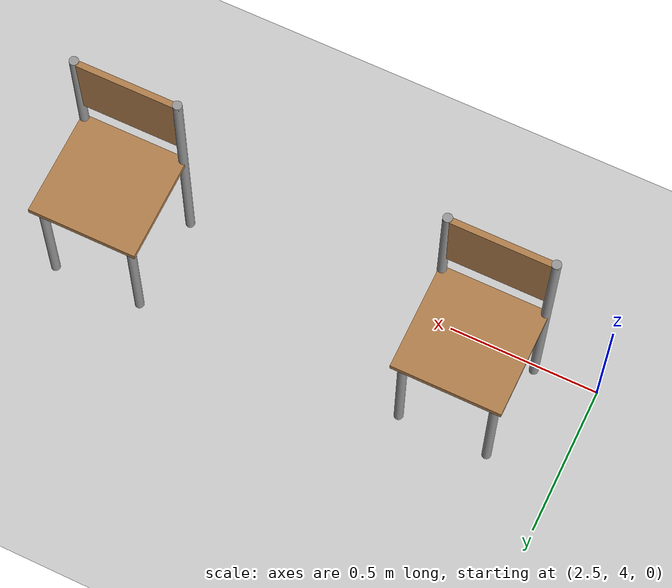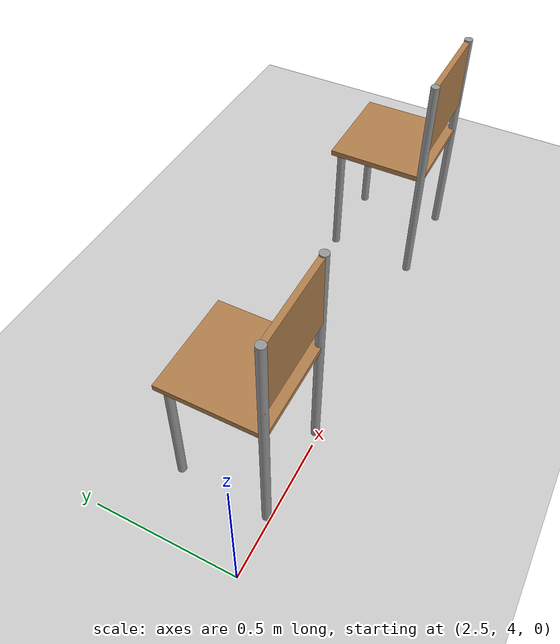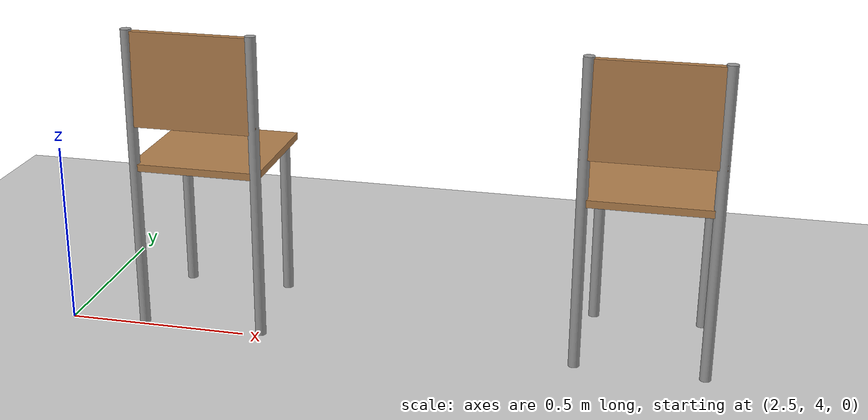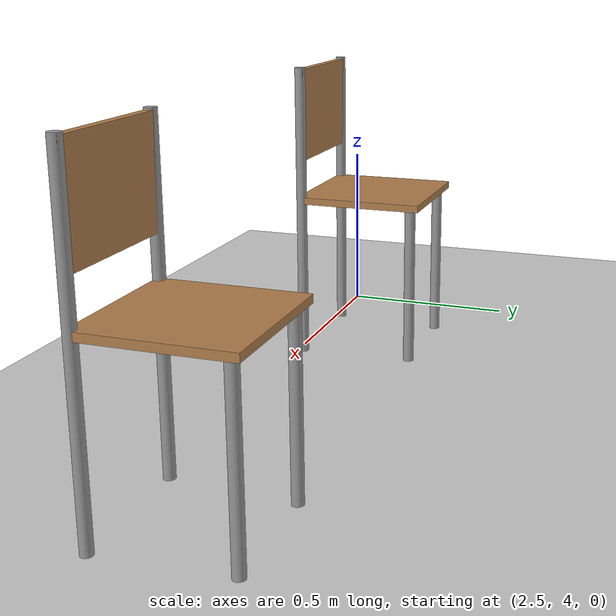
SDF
<sdf version="1.7">
 <world name="default">
  <model name="ground_plane">
   <static>1</static>
   <link name="link">
    <collision name="collision">
     <geometry><plane><normal>0 0 1</normal><size>100 100</size></plane></geometry>
     <surface>
      <contact><collide_bitmask>65535</collide_bitmask></contact>
      <friction><ode><mu>100</mu><mu2>50</mu2></ode></friction>
     </surface>
    </collision>
    <visual name="visual">
     <cast_shadows>0</cast_shadows>
     <geometry><plane><normal>0 0 1</normal><size>100 100</size></plane></geometry>
     <material>
      <script><uri>file://media/materials/scripts/gazebo.material</uri><name>Gazebo/Grey</name></script>
     </material>
    </visual>
   </link>
  </model>
  <model name="chair_mod_0_clone_2_clone">
   <link name="link">
    <inertial>
     <mass>1</mass>
     <inertia><ixx>1</ixx><ixy>0</ixy><ixz>0</ixz><iyy>1</iyy><iyz>0</iyz><izz>1</izz></inertia>
    </inertial>
    <visual name="back_right_leg">
     <pose>-0.17 -0.17 0.42 0 -0 0</pose>
     <geometry><cylinder><radius>0.015</radius><length>0.84</length></cylinder></geometry>
     <material>
      <script><uri>file://media/materials/scripts/gazebo.material</uri><name>Gazebo/Grey</name></script>
      <shader type="pixel"><normal_map>__default__</normal_map></shader>
      <ambient>0.3 0.3 0.3 1</ambient>
      <diffuse>0.7 0.7 0.7 1</diffuse>
      <specular>0.01 0.01 0.01 1</specular>
      <emissive>0 0 0 1</emissive>
     </material>
    </visual>
    <visual name="back_left_leg">
     <pose>-0.15 0.15 0.23 0 -0 0</pose>
     <geometry><cylinder><radius>0.015</radius><length>0.46</length></cylinder></geometry>
     <material>
      <script><uri>file://media/materials/scripts/gazebo.material</uri><name>Gazebo/Grey</name></script>
      <shader type="pixel"><normal_map>__default__</normal_map></shader>
      <ambient>0.3 0.3 0.3 1</ambient>
      <diffuse>0.7 0.7 0.7 1</diffuse>
      <specular>0.01 0.01 0.01 1</specular>
      <emissive>0 0 0 1</emissive>
     </material>
    </visual>
    <visual name="visual1">
     <pose>0 0 0.46 0 -0 0</pose>
     <geometry><box><size>0.36 0.36 0.02</size></box></geometry>
     <material>
      <script><uri>file://media/materials/scripts/gazebo.material</uri><name>Gazebo/Wood</name></script>
      <shader type="pixel"><normal_map>__default__</normal_map></shader>
      <ambient>1 1 1 1</ambient>
      <diffuse>1 1 1 1</diffuse>
      <specular>0.2 0.2 0.2 1</specular>
      <emissive>0 0 0 1</emissive>
     </material>
    </visual>
    <visual name="ModelPreview_1::link::visual_5">
     <pose>0 -0.17 0.705 1.56 -0 0</pose>
     <geometry><box><size>0.36 0.26 0.02</size></box></geometry>
     <material>
      <script><uri>file://media/materials/scripts/gazebo.material</uri><name>Gazebo/Wood</name></script>
      <shader type="pixel"><normal_map>__default__</normal_map></shader>
      <ambient>1 1 1 1</ambient>
      <diffuse>1 1 1 1</diffuse>
      <specular>0.2 0.2 0.2 1</specular>
      <emissive>0 0 0 1</emissive>
     </material>
    </visual>
    <visual name="front_left_leg">
     <pose>0.15 0.15 0.23 0 -0 0</pose>
     <geometry><cylinder><radius>0.015</radius><length>0.46</length></cylinder></geometry>
     <material>
      <script><uri>file://media/materials/scripts/gazebo.material</uri><name>Gazebo/Grey</name></script>
      <shader type="pixel"><normal_map>__default__</normal_map></shader>
      <ambient>0.3 0.3 0.3 1</ambient>
      <diffuse>0.7 0.7 0.7 1</diffuse>
      <specular>0.01 0.01 0.01 1</specular>
      <emissive>0 0 0 1</emissive>
     </material>
    </visual>
    <visual name="front_right_leg">
     <pose>0.17 -0.17 0.42 0 -0 0</pose>
     <geometry><cylinder><radius>0.015</radius><length>0.84</length></cylinder></geometry>
     <material>
      <script><uri>file://media/materials/scripts/gazebo.material</uri><name>Gazebo/Grey</name></script>
      <shader type="pixel"><normal_map>__default__</normal_map></shader>
      <ambient>0.3 0.3 0.3 1</ambient>
      <diffuse>0.7 0.7 0.7 1</diffuse>
      <specular>0.01 0.01 0.01 1</specular>
      <emissive>0 0 0 1</emissive>
     </material>
    </visual>
    <collision name="front_right_leg">
     <pose>0.17 -0.17 0.42 0 -0 0</pose>
     <geometry><cylinder><radius>0.015</radius><length>0.84</length></cylinder></geometry>
     <surface>
      <friction>
       <ode><mu>1</mu><mu2>1</mu2><fdir1>0 0 0</fdir1><slip1>0</slip1><slip2>0</slip2></ode>
       <torsional>
        <coefficient>1</coefficient>
        <patch_radius>0</patch_radius>
        <surface_radius>0</surface_radius>
        <use_patch_radius>1</use_patch_radius>
        <ode><slip>0</slip></ode>
       </torsional>
      </friction>
      <bounce><restitution_coefficient>0</restitution_coefficient><threshold>1e+06</threshold></bounce>
      <contact>
       <collide_without_contact>0</collide_without_contact>
       <collide_without_contact_bitmask>1</collide_without_contact_bitmask>
       <collide_bitmask>1</collide_bitmask>
       <ode>
        <soft_cfm>0</soft_cfm>
        <soft_erp>0.2</soft_erp>
        <kp>1e+13</kp>
        <kd>1</kd>
        <max_vel>0.01</max_vel>
        <min_depth>0</min_depth>
       </ode>
       <bullet>
        <split_impulse>1</split_impulse>
        <split_impulse_penetration_threshold>-0.01</split_impulse_penetration_threshold>
        <soft_cfm>0</soft_cfm>
        <soft_erp>0.2</soft_erp>
        <kp>1e+13</kp>
        <kd>1</kd>
       </bullet>
      </contact>
     </surface>
    </collision>
    <collision name="back_right_leg">
     <pose>-0.17 -0.17 0.42 0 -0 0</pose>
     <geometry><cylinder><radius>0.015</radius><length>0.84</length></cylinder></geometry>
     <surface>
      <friction>
       <ode><mu>1</mu><mu2>1</mu2><fdir1>0 0 0</fdir1><slip1>0</slip1><slip2>0</slip2></ode>
       <torsional>
        <coefficient>1</coefficient>
        <patch_radius>0</patch_radius>
        <surface_radius>0</surface_radius>
        <use_patch_radius>1</use_patch_radius>
        <ode><slip>0</slip></ode>
       </torsional>
      </friction>
      <bounce><restitution_coefficient>0</restitution_coefficient><threshold>1e+06</threshold></bounce>
      <contact>
       <collide_without_contact>0</collide_without_contact>
       <collide_without_contact_bitmask>1</collide_without_contact_bitmask>
       <collide_bitmask>1</collide_bitmask>
       <ode>
        <soft_cfm>0</soft_cfm>
        <soft_erp>0.2</soft_erp>
        <kp>1e+13</kp>
        <kd>1</kd>
        <max_vel>0.01</max_vel>
        <min_depth>0</min_depth>
       </ode>
       <bullet>
        <split_impulse>1</split_impulse>
        <split_impulse_penetration_threshold>-0.01</split_impulse_penetration_threshold>
        <soft_cfm>0</soft_cfm>
        <soft_erp>0.2</soft_erp>
        <kp>1e+13</kp>
        <kd>1</kd>
       </bullet>
      </contact>
     </surface>
    </collision>
    <collision name="back_left_leg">
     <pose>-0.15 0.15 0.23 0 -0 0</pose>
     <geometry><cylinder><radius>0.015</radius><length>0.46</length></cylinder></geometry>
     <surface>
      <friction>
       <ode><mu>1</mu><mu2>1</mu2><fdir1>0 0 0</fdir1><slip1>0</slip1><slip2>0</slip2></ode>
       <torsional>
        <coefficient>1</coefficient>
        <patch_radius>0</patch_radius>
        <surface_radius>0</surface_radius>
        <use_patch_radius>1</use_patch_radius>
        <ode><slip>0</slip></ode>
       </torsional>
      </friction>
      <bounce><restitution_coefficient>0</restitution_coefficient><threshold>1e+06</threshold></bounce>
      <contact>
       <collide_without_contact>0</collide_without_contact>
       <collide_without_contact_bitmask>1</collide_without_contact_bitmask>
       <collide_bitmask>1</collide_bitmask>
       <ode>
        <soft_cfm>0</soft_cfm>
        <soft_erp>0.2</soft_erp>
        <kp>1e+13</kp>
        <kd>1</kd>
        <max_vel>0.01</max_vel>
        <min_depth>0</min_depth>
       </ode>
       <bullet>
        <split_impulse>1</split_impulse>
        <split_impulse_penetration_threshold>-0.01</split_impulse_penetration_threshold>
        <soft_cfm>0</soft_cfm>
        <soft_erp>0.2</soft_erp>
        <kp>1e+13</kp>
        <kd>1</kd>
       </bullet>
      </contact>
     </surface>
    </collision>
    <collision name="collision_6">
     <pose>0 -0.17 0.705 1.56 -0 0</pose>
     <geometry><box><size>0.36 0.26 0.03</size></box></geometry>
     <surface>
      <friction>
       <ode><mu>1</mu><mu2>1</mu2><fdir1>0 0 0</fdir1><slip1>0</slip1><slip2>0</slip2></ode>
       <torsional>
        <coefficient>1</coefficient>
        <patch_radius>0</patch_radius>
        <surface_radius>0</surface_radius>
        <use_patch_radius>1</use_patch_radius>
        <ode><slip>0</slip></ode>
       </torsional>
      </friction>
      <bounce><restitution_coefficient>0</restitution_coefficient><threshold>1e+06</threshold></bounce>
      <contact>
       <collide_without_contact>0</collide_without_contact>
       <collide_without_contact_bitmask>1</collide_without_contact_bitmask>
       <collide_bitmask>1</collide_bitmask>
       <ode>
        <soft_cfm>0</soft_cfm>
        <soft_erp>0.2</soft_erp>
        <kp>1e+13</kp>
        <kd>1</kd>
        <max_vel>0.01</max_vel>
        <min_depth>0</min_depth>
       </ode>
       <bullet>
        <split_impulse>1</split_impulse>
        <split_impulse_penetration_threshold>-0.01</split_impulse_penetration_threshold>
        <soft_cfm>0</soft_cfm>
        <soft_erp>0.2</soft_erp>
        <kp>1e+13</kp>
        <kd>1</kd>
       </bullet>
      </contact>
     </surface>
    </collision>
    <collision name="surface">
     <pose>0 0 0.46 0 -0 0</pose>
     <geometry><box><size>0.36 0.36 0.03</size></box></geometry>
     <surface>
      <friction>
       <ode><mu>0.6</mu><mu2>0.6</mu2><fdir1>0 0 0</fdir1><slip1>0</slip1><slip2>0</slip2></ode>
       <torsional>
        <coefficient>1</coefficient>
        <patch_radius>0</patch_radius>
        <surface_radius>0</surface_radius>
        <use_patch_radius>1</use_patch_radius>
        <ode><slip>0</slip></ode>
       </torsional>
      </friction>
      <bounce><restitution_coefficient>0</restitution_coefficient><threshold>1e+06</threshold></bounce>
      <contact>
       <collide_without_contact>0</collide_without_contact>
       <collide_without_contact_bitmask>1</collide_without_contact_bitmask>
       <collide_bitmask>1</collide_bitmask>
       <ode>
        <soft_cfm>0</soft_cfm>
        <soft_erp>0.2</soft_erp>
        <kp>1e+13</kp>
        <kd>1</kd>
        <max_vel>0.01</max_vel>
        <min_depth>0</min_depth>
       </ode>
       <bullet>
        <split_impulse>1</split_impulse>
        <split_impulse_penetration_threshold>-0.01</split_impulse_penetration_threshold>
        <soft_cfm>0</soft_cfm>
        <soft_erp>0.2</soft_erp>
        <kp>1e+13</kp>
        <kd>1</kd>
       </bullet>
      </contact>
     </surface>
    </collision>
    <collision name="front_left_leg">
     <pose>0.15 0.15 0.23 0 -0 0</pose>
     <geometry><cylinder><radius>0.015</radius><length>0.46</length></cylinder></geometry>
     <surface>
      <friction>
       <ode><mu>1</mu><mu2>1</mu2><fdir1>0 0 0</fdir1><slip1>0</slip1><slip2>0</slip2></ode>
       <torsional>
        <coefficient>1</coefficient>
        <patch_radius>0</patch_radius>
        <surface_radius>0</surface_radius>
        <use_patch_radius>1</use_patch_radius>
        <ode><slip>0</slip></ode>
       </torsional>
      </friction>
      <bounce><restitution_coefficient>0</restitution_coefficient><threshold>1e+06</threshold></bounce>
      <contact>
       <collide_without_contact>0</collide_without_contact>
       <collide_without_contact_bitmask>1</collide_without_contact_bitmask>
       <collide_bitmask>1</collide_bitmask>
       <ode>
        <soft_cfm>0</soft_cfm>
        <soft_erp>0.2</soft_erp>
        <kp>1e+13</kp>
        <kd>1</kd>
        <max_vel>0.01</max_vel>
        <min_depth>0</min_depth>
       </ode>
       <bullet>
        <split_impulse>1</split_impulse>
        <split_impulse_penetration_threshold>-0.01</split_impulse_penetration_threshold>
        <soft_cfm>0</soft_cfm>
        <soft_erp>0.2</soft_erp>
        <kp>1e+13</kp>
        <kd>1</kd>
       </bullet>
      </contact>
     </surface>
    </collision>
   </link>
   <static>1</static>
   <pose>2.87884 4.1853 0 0 -0 4e-06</pose>
  </model>
  <model name="chair_mod_0_clone_2_clone_0">
   <link name="link">
    <inertial>
     <mass>1</mass>
     <inertia><ixx>1</ixx><ixy>0</ixy><ixz>0</ixz><iyy>1</iyy><iyz>0</iyz><izz>1</izz></inertia>
    </inertial>
    <visual name="back_right_leg">
     <pose>-0.17 -0.17 0.42 0 -0 0</pose>
     <geometry><cylinder><radius>0.015</radius><length>0.84</length></cylinder></geometry>
     <material>
      <script><uri>file://media/materials/scripts/gazebo.material</uri><name>Gazebo/Grey</name></script>
      <shader type="pixel"><normal_map>__default__</normal_map></shader>
      <ambient>0.3 0.3 0.3 1</ambient>
      <diffuse>0.7 0.7 0.7 1</diffuse>
      <specular>0.01 0.01 0.01 1</specular>
      <emissive>0 0 0 1</emissive>
     </material>
    </visual>
    <visual name="back_left_leg">
     <pose>-0.15 0.15 0.23 0 -0 0</pose>
     <geometry><cylinder><radius>0.015</radius><length>0.46</length></cylinder></geometry>
     <material>
      <script><uri>file://media/materials/scripts/gazebo.material</uri><name>Gazebo/Grey</name></script>
      <shader type="pixel"><normal_map>__default__</normal_map></shader>
      <ambient>0.3 0.3 0.3 1</ambient>
      <diffuse>0.7 0.7 0.7 1</diffuse>
      <specular>0.01 0.01 0.01 1</specular>
      <emissive>0 0 0 1</emissive>
     </material>
    </visual>
    <visual name="visual1">
     <pose>0 0 0.46 0 -0 0</pose>
     <geometry><box><size>0.36 0.36 0.02</size></box></geometry>
     <material>
      <script><uri>file://media/materials/scripts/gazebo.material</uri><name>Gazebo/Wood</name></script>
      <shader type="pixel"><normal_map>__default__</normal_map></shader>
      <ambient>1 1 1 1</ambient>
      <diffuse>1 1 1 1</diffuse>
      <specular>0.2 0.2 0.2 1</specular>
      <emissive>0 0 0 1</emissive>
     </material>
    </visual>
    <visual name="ModelPreview_1::link::visual_5">
     <pose>0 -0.17 0.705 1.56 -0 0</pose>
     <geometry><box><size>0.36 0.26 0.02</size></box></geometry>
     <material>
      <script><uri>file://media/materials/scripts/gazebo.material</uri><name>Gazebo/Wood</name></script>
      <shader type="pixel"><normal_map>__default__</normal_map></shader>
      <ambient>1 1 1 1</ambient>
      <diffuse>1 1 1 1</diffuse>
      <specular>0.2 0.2 0.2 1</specular>
      <emissive>0 0 0 1</emissive>
     </material>
    </visual>
    <visual name="front_left_leg">
     <pose>0.15 0.15 0.23 0 -0 0</pose>
     <geometry><cylinder><radius>0.015</radius><length>0.46</length></cylinder></geometry>
     <material>
      <script><uri>file://media/materials/scripts/gazebo.material</uri><name>Gazebo/Grey</name></script>
      <shader type="pixel"><normal_map>__default__</normal_map></shader>
      <ambient>0.3 0.3 0.3 1</ambient>
      <diffuse>0.7 0.7 0.7 1</diffuse>
      <specular>0.01 0.01 0.01 1</specular>
      <emissive>0 0 0 1</emissive>
     </material>
    </visual>
    <visual name="front_right_leg">
     <pose>0.17 -0.17 0.42 0 -0 0</pose>
     <geometry><cylinder><radius>0.015</radius><length>0.84</length></cylinder></geometry>
     <material>
      <script><uri>file://media/materials/scripts/gazebo.material</uri><name>Gazebo/Grey</name></script>
      <shader type="pixel"><normal_map>__default__</normal_map></shader>
      <ambient>0.3 0.3 0.3 1</ambient>
      <diffuse>0.7 0.7 0.7 1</diffuse>
      <specular>0.01 0.01 0.01 1</specular>
      <emissive>0 0 0 1</emissive>
     </material>
    </visual>
    <collision name="front_right_leg">
     <pose>0.17 -0.17 0.42 0 -0 0</pose>
     <geometry><cylinder><radius>0.015</radius><length>0.84</length></cylinder></geometry>
     <surface>
      <friction>
       <ode><mu>1</mu><mu2>1</mu2><fdir1>0 0 0</fdir1><slip1>0</slip1><slip2>0</slip2></ode>
       <torsional>
        <coefficient>1</coefficient>
        <patch_radius>0</patch_radius>
        <surface_radius>0</surface_radius>
        <use_patch_radius>1</use_patch_radius>
        <ode><slip>0</slip></ode>
       </torsional>
      </friction>
      <bounce><restitution_coefficient>0</restitution_coefficient><threshold>1e+06</threshold></bounce>
      <contact>
       <collide_without_contact>0</collide_without_contact>
       <collide_without_contact_bitmask>1</collide_without_contact_bitmask>
       <collide_bitmask>1</collide_bitmask>
       <ode>
        <soft_cfm>0</soft_cfm>
        <soft_erp>0.2</soft_erp>
        <kp>1e+13</kp>
        <kd>1</kd>
        <max_vel>0.01</max_vel>
        <min_depth>0</min_depth>
       </ode>
       <bullet>
        <split_impulse>1</split_impulse>
        <split_impulse_penetration_threshold>-0.01</split_impulse_penetration_threshold>
        <soft_cfm>0</soft_cfm>
        <soft_erp>0.2</soft_erp>
        <kp>1e+13</kp>
        <kd>1</kd>
       </bullet>
      </contact>
     </surface>
    </collision>
    <collision name="back_right_leg">
     <pose>-0.17 -0.17 0.42 0 -0 0</pose>
     <geometry><cylinder><radius>0.015</radius><length>0.84</length></cylinder></geometry>
     <surface>
      <friction>
       <ode><mu>1</mu><mu2>1</mu2><fdir1>0 0 0</fdir1><slip1>0</slip1><slip2>0</slip2></ode>
       <torsional>
        <coefficient>1</coefficient>
        <patch_radius>0</patch_radius>
        <surface_radius>0</surface_radius>
        <use_patch_radius>1</use_patch_radius>
        <ode><slip>0</slip></ode>
       </torsional>
      </friction>
      <bounce><restitution_coefficient>0</restitution_coefficient><threshold>1e+06</threshold></bounce>
      <contact>
       <collide_without_contact>0</collide_without_contact>
       <collide_without_contact_bitmask>1</collide_without_contact_bitmask>
       <collide_bitmask>1</collide_bitmask>
       <ode>
        <soft_cfm>0</soft_cfm>
        <soft_erp>0.2</soft_erp>
        <kp>1e+13</kp>
        <kd>1</kd>
        <max_vel>0.01</max_vel>
        <min_depth>0</min_depth>
       </ode>
       <bullet>
        <split_impulse>1</split_impulse>
        <split_impulse_penetration_threshold>-0.01</split_impulse_penetration_threshold>
        <soft_cfm>0</soft_cfm>
        <soft_erp>0.2</soft_erp>
        <kp>1e+13</kp>
        <kd>1</kd>
       </bullet>
      </contact>
     </surface>
    </collision>
    <collision name="back_left_leg">
     <pose>-0.15 0.15 0.23 0 -0 0</pose>
     <geometry><cylinder><radius>0.015</radius><length>0.46</length></cylinder></geometry>
     <surface>
      <friction>
       <ode><mu>1</mu><mu2>1</mu2><fdir1>0 0 0</fdir1><slip1>0</slip1><slip2>0</slip2></ode>
       <torsional>
        <coefficient>1</coefficient>
        <patch_radius>0</patch_radius>
        <surface_radius>0</surface_radius>
        <use_patch_radius>1</use_patch_radius>
        <ode><slip>0</slip></ode>
       </torsional>
      </friction>
      <bounce><restitution_coefficient>0</restitution_coefficient><threshold>1e+06</threshold></bounce>
      <contact>
       <collide_without_contact>0</collide_without_contact>
       <collide_without_contact_bitmask>1</collide_without_contact_bitmask>
       <collide_bitmask>1</collide_bitmask>
       <ode>
        <soft_cfm>0</soft_cfm>
        <soft_erp>0.2</soft_erp>
        <kp>1e+13</kp>
        <kd>1</kd>
        <max_vel>0.01</max_vel>
        <min_depth>0</min_depth>
       </ode>
       <bullet>
        <split_impulse>1</split_impulse>
        <split_impulse_penetration_threshold>-0.01</split_impulse_penetration_threshold>
        <soft_cfm>0</soft_cfm>
        <soft_erp>0.2</soft_erp>
        <kp>1e+13</kp>
        <kd>1</kd>
       </bullet>
      </contact>
     </surface>
    </collision>
    <collision name="collision_6">
     <pose>0 -0.17 0.705 1.56 -0 0</pose>
     <geometry><box><size>0.36 0.26 0.03</size></box></geometry>
     <surface>
      <friction>
       <ode><mu>1</mu><mu2>1</mu2><fdir1>0 0 0</fdir1><slip1>0</slip1><slip2>0</slip2></ode>
       <torsional>
        <coefficient>1</coefficient>
        <patch_radius>0</patch_radius>
        <surface_radius>0</surface_radius>
        <use_patch_radius>1</use_patch_radius>
        <ode><slip>0</slip></ode>
       </torsional>
      </friction>
      <bounce><restitution_coefficient>0</restitution_coefficient><threshold>1e+06</threshold></bounce>
      <contact>
       <collide_without_contact>0</collide_without_contact>
       <collide_without_contact_bitmask>1</collide_without_contact_bitmask>
       <collide_bitmask>1</collide_bitmask>
       <ode>
        <soft_cfm>0</soft_cfm>
        <soft_erp>0.2</soft_erp>
        <kp>1e+13</kp>
        <kd>1</kd>
        <max_vel>0.01</max_vel>
        <min_depth>0</min_depth>
       </ode>
       <bullet>
        <split_impulse>1</split_impulse>
        <split_impulse_penetration_threshold>-0.01</split_impulse_penetration_threshold>
        <soft_cfm>0</soft_cfm>
        <soft_erp>0.2</soft_erp>
        <kp>1e+13</kp>
        <kd>1</kd>
       </bullet>
      </contact>
     </surface>
    </collision>
    <collision name="surface">
     <pose>0 0 0.46 0 -0 0</pose>
     <geometry><box><size>0.36 0.36 0.03</size></box></geometry>
     <surface>
      <friction>
       <ode><mu>0.6</mu><mu2>0.6</mu2><fdir1>0 0 0</fdir1><slip1>0</slip1><slip2>0</slip2></ode>
       <torsional>
        <coefficient>1</coefficient>
        <patch_radius>0</patch_radius>
        <surface_radius>0</surface_radius>
        <use_patch_radius>1</use_patch_radius>
        <ode><slip>0</slip></ode>
       </torsional>
      </friction>
      <bounce><restitution_coefficient>0</restitution_coefficient><threshold>1e+06</threshold></bounce>
      <contact>
       <collide_without_contact>0</collide_without_contact>
       <collide_without_contact_bitmask>1</collide_without_contact_bitmask>
       <collide_bitmask>1</collide_bitmask>
       <ode>
        <soft_cfm>0</soft_cfm>
        <soft_erp>0.2</soft_erp>
        <kp>1e+13</kp>
        <kd>1</kd>
        <max_vel>0.01</max_vel>
        <min_depth>0</min_depth>
       </ode>
       <bullet>
        <split_impulse>1</split_impulse>
        <split_impulse_penetration_threshold>-0.01</split_impulse_penetration_threshold>
        <soft_cfm>0</soft_cfm>
        <soft_erp>0.2</soft_erp>
        <kp>1e+13</kp>
        <kd>1</kd>
       </bullet>
      </contact>
     </surface>
    </collision>
    <collision name="front_left_leg">
     <pose>0.15 0.15 0.23 0 -0 0</pose>
     <geometry><cylinder><radius>0.015</radius><length>0.46</length></cylinder></geometry>
     <surface>
      <friction>
       <ode><mu>1</mu><mu2>1</mu2><fdir1>0 0 0</fdir1><slip1>0</slip1><slip2>0</slip2></ode>
       <torsional>
        <coefficient>1</coefficient>
        <patch_radius>0</patch_radius>
        <surface_radius>0</surface_radius>
        <use_patch_radius>1</use_patch_radius>
        <ode><slip>0</slip></ode>
       </torsional>
      </friction>
      <bounce><restitution_coefficient>0</restitution_coefficient><threshold>1e+06</threshold></bounce>
      <contact>
       <collide_without_contact>0</collide_without_contact>
       <collide_without_contact_bitmask>1</collide_without_contact_bitmask>
       <collide_bitmask>1</collide_bitmask>
       <ode>
        <soft_cfm>0</soft_cfm>
        <soft_erp>0.2</soft_erp>
        <kp>1e+13</kp>
        <kd>1</kd>
        <max_vel>0.01</max_vel>
        <min_depth>0</min_depth>
       </ode>
       <bullet>
        <split_impulse>1</split_impulse>
        <split_impulse_penetration_threshold>-0.01</split_impulse_penetration_threshold>
        <soft_cfm>0</soft_cfm>
        <soft_erp>0.2</soft_erp>
        <kp>1e+13</kp>
        <kd>1</kd>
       </bullet>
      </contact>
     </surface>
    </collision>
   </link>
   <static>1</static>
   <pose>4.07926 4.19734 0 0 -0 4e-06</pose>
  </model>
 </world>
</sdf>
